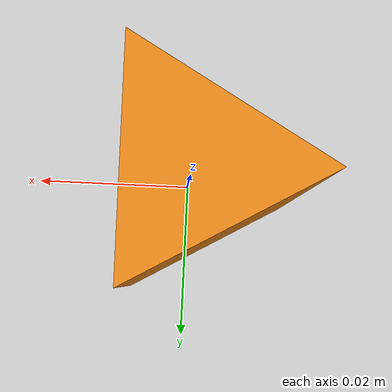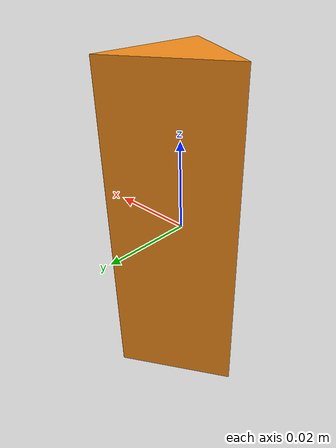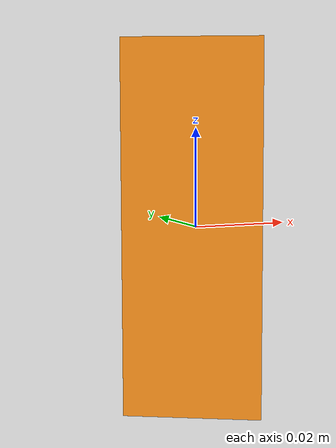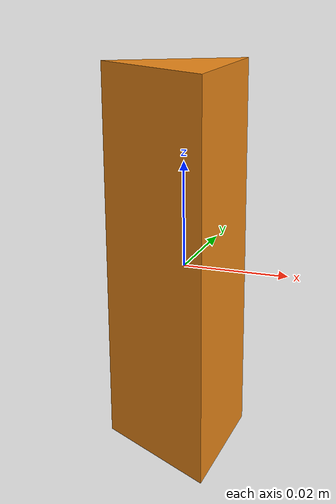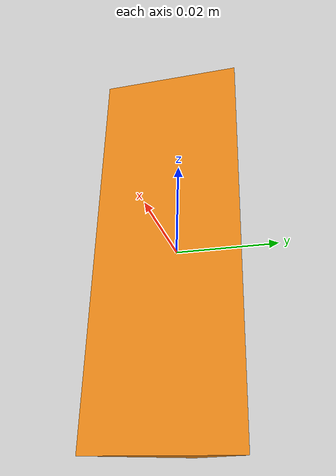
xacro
<?xml version="1.0"?>
<!-- Revolute-Revolute Manipulator -->
<robot name="cuboid_3" xmlns:xacro="http://www.ros.org/wiki/xacro">

  <!-- Constants for robot dimensions -->
  <xacro:property name="PI" value="3.1415926535897931"/>
  <xacro:property name="mass" value="0.1" /> <!-- arbitrary value for mass -->

  <xacro:include filename="$(find object_description)/urdf/materials.xacro" />

  <link name="world"/>

  <joint name="world_cuboid_3" type="floating">
    <parent link="world"/>
    <child link="cuboid_3"/>
    <origin xyz="0 0 0" rpy="0 0 ${PI/2}"/>
  </joint>

  <!-- table -->
  <link name="cuboid_3">

    <visual>
      <origin xyz="0 0 0" rpy="0 0 0"/>
      <geometry>
	<mesh filename="package://object_description/meshes/cuboid_3.stl" scale="1 1 1" />
      </geometry>
      <material name="orange"/>
    </visual>

    <collision>
      <origin xyz="0 0 0" rpy="0 0 0"/>
      <geometry>
	<mesh filename="package://object_description/meshes/cuboid_3.stl" scale="1 1 1" />
      </geometry>
    </collision>

    <inertial>
      <origin xyz="0 0 0" rpy="0 0 0"/>
      <mass value="${mass}"/>
      <inertia
	  ixx="0.00000364583333" ixy="0.0" ixz="0.0"
	  iyy="0.00000364583333" iyz="0.0"
	  izz="0.000003125" />
    </inertial>
  </link>

  <gazebo reference="cuboid_3">
    <material>Gazebo/Wood</material>
   <mu1>5000</mu1>
    <mu2>1000</mu2>
    <kp>10000.0</kp>
    <kd>1.0</kd>
  </gazebo>

</robot>
